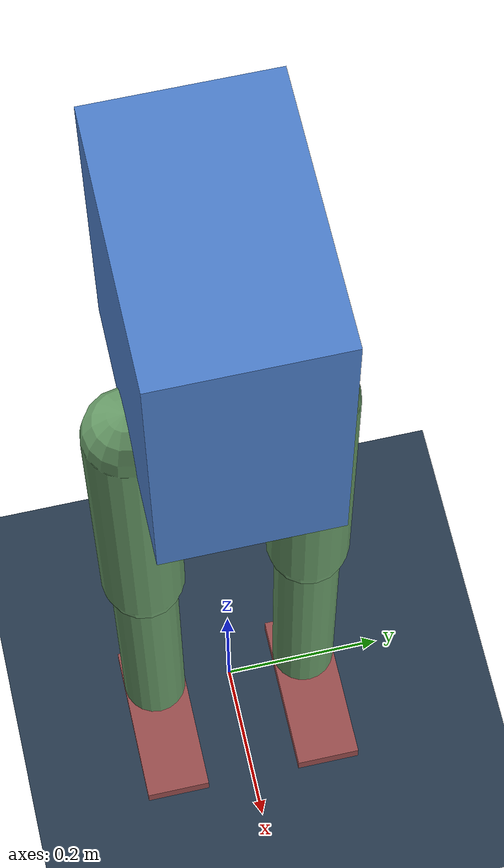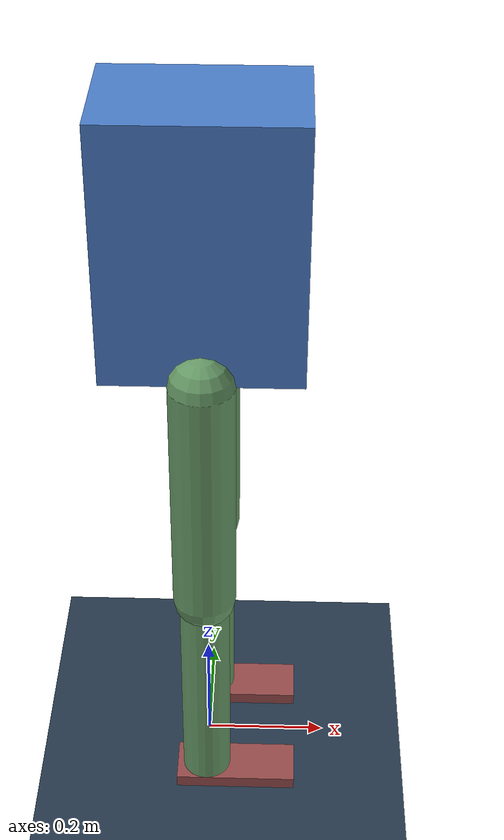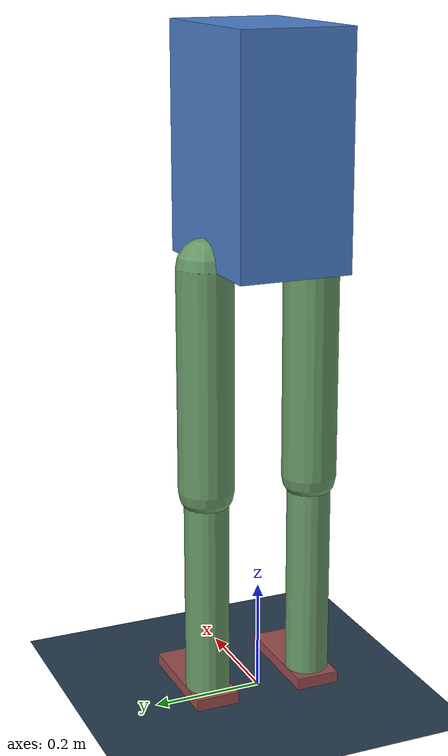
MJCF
<mujoco model="simple_biped">
  <compiler angle="radian"/>

  <asset>
    <texture type="2d" name="groundplane" builtin="checker" rgb1="0.2 0.3 0.4" rgb2="0.1 0.15 0.2" width="300" height="300"/>
    <material name="groundplane" texture="groundplane" texrepeat="5 5" reflectance="0.2"/>
  </asset>

  <worldbody>
    <light directional="true" diffuse="0.8 0.8 0.8" specular="0.3 0.3 0.3" pos="0 0 5" dir="0 0 -1"/>
    <geom name="floor" type="plane" size="10 10 0.1" material="groundplane" condim="3" friction="1.0 0.005 0.0001"/>

    <body name="base_link" pos="0 0 1.0">
      <freejoint name="floating_base"/>
      <inertial mass="10.0" pos="0 0 0" diaginertia="0.1 0.1 0.05"/>
      <geom type="box" size="0.15 0.1 0.2" rgba="0.3 0.5 0.8 1"/>

      <!-- Left leg -->
      <body name="left_upper_leg" pos="0 0.1 -0.2">
        <joint name="left_hip_pitch" type="hinge" axis="0 1 0" range="-1.57 1.57"/>
        <inertial mass="3.0" pos="0 0 -0.2" diaginertia="0.02 0.02 0.005"/>
        <geom type="capsule" fromto="0 0 0 0 0 -0.4" size="0.05" rgba="0.4 0.6 0.4 1"/>

        <body name="left_lower_leg" pos="0 0 -0.4">
          <joint name="left_knee" type="hinge" axis="0 1 0" range="0 2.5"/>
          <inertial mass="2.0" pos="0 0 -0.2" diaginertia="0.01 0.01 0.003"/>
          <geom type="capsule" fromto="0 0 0 0 0 -0.4" size="0.04" rgba="0.4 0.6 0.4 1"/>

          <body name="left_foot" pos="0 0 -0.4">
            <joint name="left_ankle" type="hinge" axis="0 1 0" range="-0.8 0.8"/>
            <inertial mass="0.5" pos="0.05 0 0" diaginertia="0.001 0.002 0.001"/>
            <geom type="box" size="0.1 0.04 0.02" pos="0.05 0 0" rgba="0.6 0.3 0.3 1"/>
          </body>
        </body>
      </body>

      <!-- Right leg -->
      <body name="right_upper_leg" pos="0 -0.1 -0.2">
        <joint name="right_hip_pitch" type="hinge" axis="0 1 0" range="-1.57 1.57"/>
        <inertial mass="3.0" pos="0 0 -0.2" diaginertia="0.02 0.02 0.005"/>
        <geom type="capsule" fromto="0 0 0 0 0 -0.4" size="0.05" rgba="0.4 0.6 0.4 1"/>

        <body name="right_lower_leg" pos="0 0 -0.4">
          <joint name="right_knee" type="hinge" axis="0 1 0" range="0 2.5"/>
          <inertial mass="2.0" pos="0 0 -0.2" diaginertia="0.01 0.01 0.003"/>
          <geom type="capsule" fromto="0 0 0 0 0 -0.4" size="0.04" rgba="0.4 0.6 0.4 1"/>

          <body name="right_foot" pos="0 0 -0.4">
            <joint name="right_ankle" type="hinge" axis="0 1 0" range="-0.8 0.8"/>
            <inertial mass="0.5" pos="0.05 0 0" diaginertia="0.001 0.002 0.001"/>
            <geom type="box" size="0.1 0.04 0.02" pos="0.05 0 0" rgba="0.6 0.3 0.3 1"/>
          </body>
        </body>
      </body>
    </body>
  </worldbody>
</mujoco>
